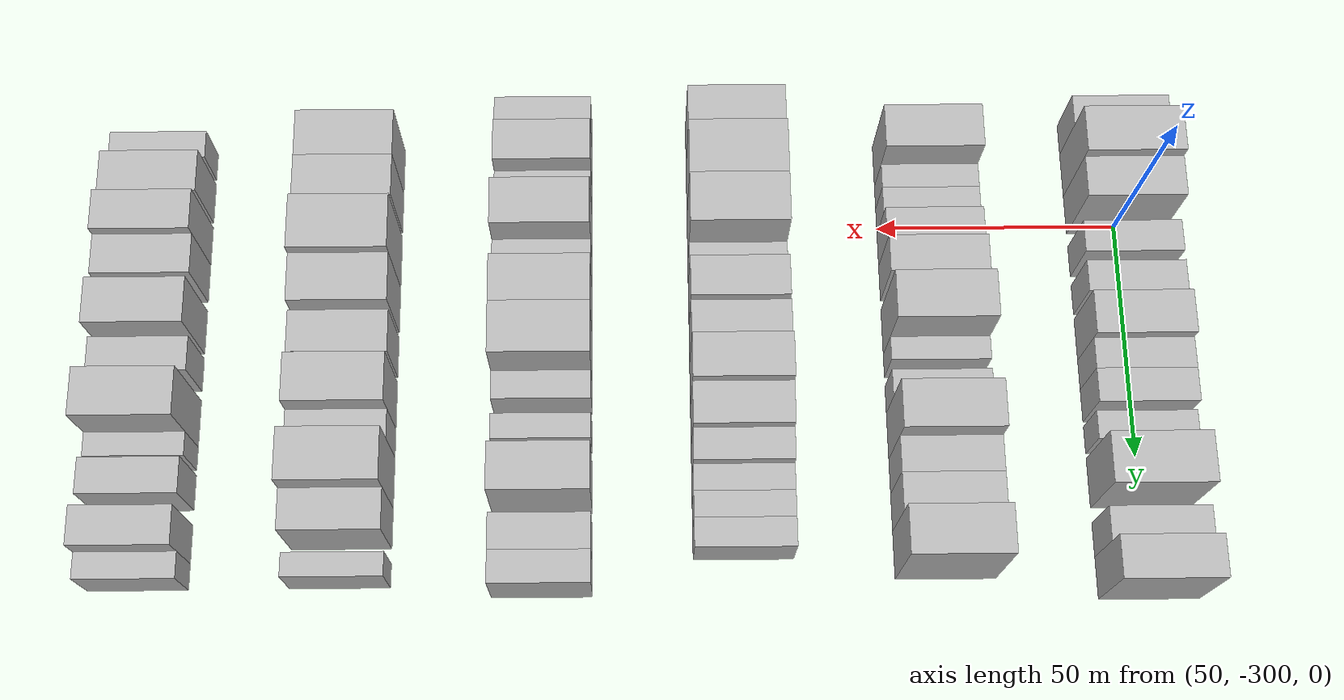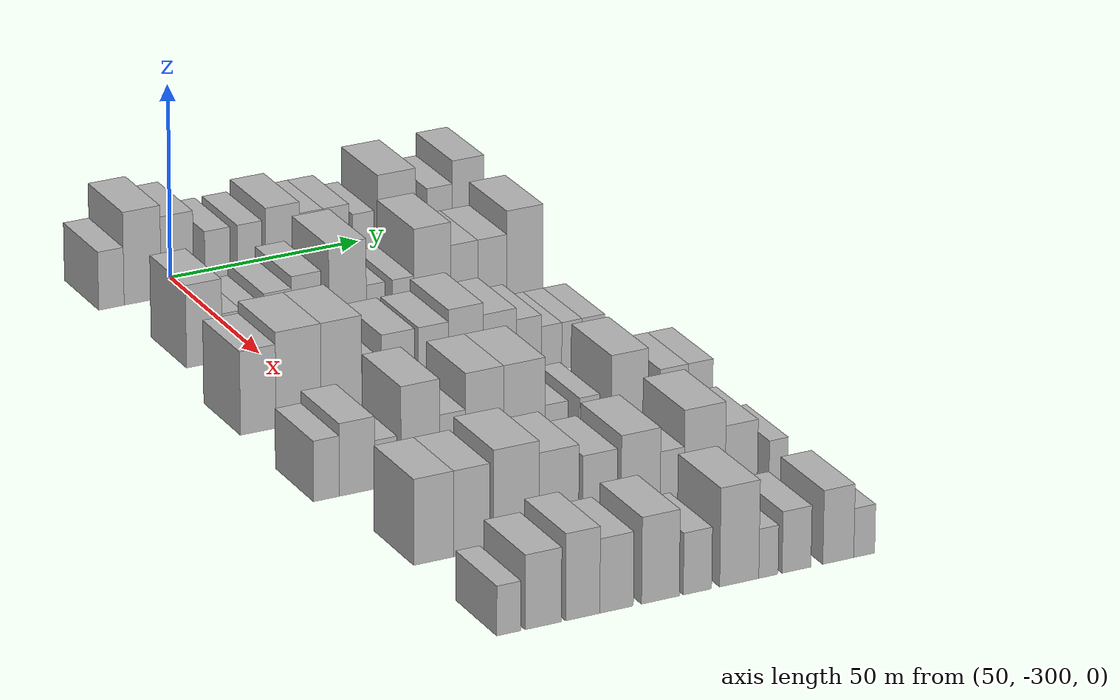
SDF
<sdf version="1.6">
 <world name="default">
  <model name="building_32">
   <static>1</static>
   <pose>50.0000 -320.1309 0 0.000000 0.000000 0.000000</pose>
   <link name="link">
    <pose>0 0 7.50 0 0 0</pose>
    <collision name="collision"><geometry><box><size>20.0000 6.6571 15.0000</size></box></geometry></collision>
    <visual name="visual">
     <cast_shadows>0</cast_shadows>
     <geometry><box><size>20.0000 6.6571 15.0000</size></box></geometry>
     <material>
      <script>
       <uri>model://HANNAS_wall/materials/scripts</uri>
       <uri>model://HANNAS_wall/materials/textures</uri>
       <name>vrc/HANNAS_wall</name>
      </script>
     </material>
    </visual>
   </link>
  </model>
  <model name="building_33">
   <static>1</static>
   <pose>50.0000 -311.9429 0 0.000000 0.000000 0.000000</pose>
   <link name="link">
    <pose>0 0 12.00 0 0 0</pose>
    <collision name="collision"><geometry><box><size>20.0000 9.7190 24.0000</size></box></geometry></collision>
    <visual name="visual">
     <cast_shadows>0</cast_shadows>
     <geometry><box><size>20.0000 9.7190 24.0000</size></box></geometry>
     <material>
      <script>
       <uri>model://HANNAS_wall/materials/scripts</uri>
       <uri>model://HANNAS_wall/materials/textures</uri>
       <name>vrc/HANNAS_wall</name>
      </script>
     </material>
    </visual>
   </link>
  </model>
  <model name="building_34">
   <static>1</static>
   <pose>50.0000 -302.8104 0 0.000000 0.000000 0.000000</pose>
   <link name="link">
    <pose>0 0 10.50 0 0 0</pose>
    <collision name="collision"><geometry><box><size>20.0000 8.5460 21.0000</size></box></geometry></collision>
    <visual name="visual">
     <cast_shadows>0</cast_shadows>
     <geometry><box><size>20.0000 8.5460 21.0000</size></box></geometry>
     <material>
      <script>
       <uri>model://HANNAS_wall/materials/scripts</uri>
       <uri>model://HANNAS_wall/materials/textures</uri>
       <name>vrc/HANNAS_wall</name>
      </script>
     </material>
    </visual>
   </link>
  </model>
  <model name="building_35">
   <static>1</static>
   <pose>50.0000 -292.2063 0 0.000000 0.000000 0.000000</pose>
   <link name="link">
    <pose>0 0 7.50 0 0 0</pose>
    <collision name="collision"><geometry><box><size>20.0000 6.6621 15.0000</size></box></geometry></collision>
    <visual name="visual">
     <cast_shadows>0</cast_shadows>
     <geometry><box><size>20.0000 6.6621 15.0000</size></box></geometry>
     <material>
      <script>
       <uri>model://HANNAS_wall/materials/scripts</uri>
       <uri>model://HANNAS_wall/materials/textures</uri>
       <name>vrc/HANNAS_wall</name>
      </script>
     </material>
    </visual>
   </link>
  </model>
  <model name="building_36">
   <static>1</static>
   <pose>50.0000 -283.6438 0 0.000000 0.000000 0.000000</pose>
   <link name="link">
    <pose>0 0 7.50 0 0 0</pose>
    <collision name="collision"><geometry><box><size>20.0000 6.4631 15.0000</size></box></geometry></collision>
    <visual name="visual">
     <cast_shadows>0</cast_shadows>
     <geometry><box><size>20.0000 6.4631 15.0000</size></box></geometry>
     <material>
      <script>
       <uri>model://HANNAS_wall/materials/scripts</uri>
       <uri>model://HANNAS_wall/materials/textures</uri>
       <name>vrc/HANNAS_wall</name>
      </script>
     </material>
    </visual>
   </link>
  </model>
  <model name="building_37">
   <static>1</static>
   <pose>50.0000 -274.9319 0 0.000000 0.000000 0.000000</pose>
   <link name="link">
    <pose>0 0 9.00 0 0 0</pose>
    <collision name="collision"><geometry><box><size>20.0000 8.9606 18.0000</size></box></geometry></collision>
    <visual name="visual">
     <cast_shadows>0</cast_shadows>
     <geometry><box><size>20.0000 8.9606 18.0000</size></box></geometry>
     <material>
      <script>
       <uri>model://HANNAS_wall/materials/scripts</uri>
       <uri>model://HANNAS_wall/materials/textures</uri>
       <name>vrc/HANNAS_wall</name>
      </script>
     </material>
    </visual>
   </link>
  </model>
  <model name="building_38">
   <static>1</static>
   <pose>50.0000 -267.2856 0 0.000000 0.000000 0.000000</pose>
   <link name="link">
    <pose>0 0 7.50 0 0 0</pose>
    <collision name="collision"><geometry><box><size>20.0000 6.3320 15.0000</size></box></geometry></collision>
    <visual name="visual">
     <cast_shadows>0</cast_shadows>
     <geometry><box><size>20.0000 6.3320 15.0000</size></box></geometry>
     <material>
      <script>
       <uri>model://HANNAS_wall/materials/scripts</uri>
       <uri>model://HANNAS_wall/materials/textures</uri>
       <name>vrc/HANNAS_wall</name>
      </script>
     </material>
    </visual>
   </link>
  </model>
  <model name="building_39">
   <static>1</static>
   <pose>50.0000 -260.6717 0 0.000000 0.000000 0.000000</pose>
   <link name="link">
    <pose>0 0 7.50 0 0 0</pose>
    <collision name="collision"><geometry><box><size>20.0000 6.8958 15.0000</size></box></geometry></collision>
    <visual name="visual">
     <cast_shadows>0</cast_shadows>
     <geometry><box><size>20.0000 6.8958 15.0000</size></box></geometry>
     <material>
      <script>
       <uri>model://HANNAS_wall/materials/scripts</uri>
       <uri>model://HANNAS_wall/materials/textures</uri>
       <name>vrc/HANNAS_wall</name>
      </script>
     </material>
    </visual>
   </link>
  </model>
  <model name="building_40">
   <static>1</static>
   <pose>50.0000 -253.3867 0 0.000000 0.000000 0.000000</pose>
   <link name="link">
    <pose>0 0 6.00 0 0 0</pose>
    <collision name="collision"><geometry><box><size>20.0000 5.6743 12.0000</size></box></geometry></collision>
    <visual name="visual">
     <cast_shadows>0</cast_shadows>
     <geometry><box><size>20.0000 5.6743 12.0000</size></box></geometry>
     <material>
      <script>
       <uri>model://HANNAS_wall/materials/scripts</uri>
       <uri>model://HANNAS_wall/materials/textures</uri>
       <name>vrc/HANNAS_wall</name>
      </script>
     </material>
    </visual>
   </link>
  </model>
  <model name="building_41">
   <static>1</static>
   <pose>50.0000 -244.4120 0 0.000000 0.000000 0.000000</pose>
   <link name="link">
    <pose>0 0 10.50 0 0 0</pose>
    <collision name="collision"><geometry><box><size>20.0000 10.2751 21.0000</size></box></geometry></collision>
    <visual name="visual">
     <cast_shadows>0</cast_shadows>
     <geometry><box><size>20.0000 10.2751 21.0000</size></box></geometry>
     <material>
      <script>
       <uri>model://HANNAS_wall/materials/scripts</uri>
       <uri>model://HANNAS_wall/materials/textures</uri>
       <name>vrc/HANNAS_wall</name>
      </script>
     </material>
    </visual>
   </link>
  </model>
  <model name="building_42">
   <static>1</static>
   <pose>50.0000 -232.7941 0 0.000000 0.000000 0.000000</pose>
   <link name="link">
    <pose>0 0 7.50 0 0 0</pose>
    <collision name="collision"><geometry><box><size>20.0000 6.9606 15.0000</size></box></geometry></collision>
    <visual name="visual">
     <cast_shadows>0</cast_shadows>
     <geometry><box><size>20.0000 6.9606 15.0000</size></box></geometry>
     <material>
      <script>
       <uri>model://HANNAS_wall/materials/scripts</uri>
       <uri>model://HANNAS_wall/materials/textures</uri>
       <name>vrc/HANNAS_wall</name>
      </script>
     </material>
    </visual>
   </link>
  </model>
  <model name="building_43">
   <static>1</static>
   <pose>50.0000 -225.0545 0 0.000000 0.000000 0.000000</pose>
   <link name="link">
    <pose>0 0 10.50 0 0 0</pose>
    <collision name="collision"><geometry><box><size>20.0000 8.5187 21.0000</size></box></geometry></collision>
    <visual name="visual">
     <cast_shadows>0</cast_shadows>
     <geometry><box><size>20.0000 8.5187 21.0000</size></box></geometry>
     <material>
      <script>
       <uri>model://HANNAS_wall/materials/scripts</uri>
       <uri>model://HANNAS_wall/materials/textures</uri>
       <name>vrc/HANNAS_wall</name>
      </script>
     </material>
    </visual>
   </link>
  </model>
  <model name="building_171">
   <static>1</static>
   <pose>90.0000 -314.2576 0 0.000000 0.000000 0.000000</pose>
   <link name="link">
    <pose>0 0 10.50 0 0 0</pose>
    <collision name="collision"><geometry><box><size>20.0000 9.2262 21.0000</size></box></geometry></collision>
    <visual name="visual">
     <cast_shadows>0</cast_shadows>
     <geometry><box><size>20.0000 9.2262 21.0000</size></box></geometry>
     <material>
      <script>
       <uri>model://HANNAS_wall/materials/scripts</uri>
       <uri>model://HANNAS_wall/materials/textures</uri>
       <name>vrc/HANNAS_wall</name>
      </script>
     </material>
    </visual>
   </link>
  </model>
  <model name="building_172">
   <static>1</static>
   <pose>90.0000 -307.0627 0 0.000000 0.000000 0.000000</pose>
   <link name="link">
    <pose>0 0 6.00 0 0 0</pose>
    <collision name="collision"><geometry><box><size>20.0000 5.1637 12.0000</size></box></geometry></collision>
    <visual name="visual">
     <cast_shadows>0</cast_shadows>
     <geometry><box><size>20.0000 5.1637 12.0000</size></box></geometry>
     <material>
      <script>
       <uri>model://HANNAS_wall/materials/scripts</uri>
       <uri>model://HANNAS_wall/materials/textures</uri>
       <name>vrc/HANNAS_wall</name>
      </script>
     </material>
    </visual>
   </link>
  </model>
  <model name="building_173">
   <static>1</static>
   <pose>90.0000 -301.6283 0 0.000000 0.000000 0.000000</pose>
   <link name="link">
    <pose>0 0 6.00 0 0 0</pose>
    <collision name="collision"><geometry><box><size>20.0000 5.7050 12.0000</size></box></geometry></collision>
    <visual name="visual">
     <cast_shadows>0</cast_shadows>
     <geometry><box><size>20.0000 5.7050 12.0000</size></box></geometry>
     <material>
      <script>
       <uri>model://HANNAS_wall/materials/scripts</uri>
       <uri>model://HANNAS_wall/materials/textures</uri>
       <name>vrc/HANNAS_wall</name>
      </script>
     </material>
    </visual>
   </link>
  </model>
  <model name="building_174">
   <static>1</static>
   <pose>90.0000 -295.1822 0 0.000000 0.000000 0.000000</pose>
   <link name="link">
    <pose>0 0 7.50 0 0 0</pose>
    <collision name="collision"><geometry><box><size>20.0000 7.1871 15.0000</size></box></geometry></collision>
    <visual name="visual">
     <cast_shadows>0</cast_shadows>
     <geometry><box><size>20.0000 7.1871 15.0000</size></box></geometry>
     <material>
      <script>
       <uri>model://HANNAS_wall/materials/scripts</uri>
       <uri>model://HANNAS_wall/materials/textures</uri>
       <name>vrc/HANNAS_wall</name>
      </script>
     </material>
    </visual>
   </link>
  </model>
  <model name="building_175">
   <static>1</static>
   <pose>90.0000 -287.7151 0 0.000000 0.000000 0.000000</pose>
   <link name="link">
    <pose>0 0 9.00 0 0 0</pose>
    <collision name="collision"><geometry><box><size>20.0000 7.7472 18.0000</size></box></geometry></collision>
    <visual name="visual">
     <cast_shadows>0</cast_shadows>
     <geometry><box><size>20.0000 7.7472 18.0000</size></box></geometry>
     <material>
      <script>
       <uri>model://HANNAS_wall/materials/scripts</uri>
       <uri>model://HANNAS_wall/materials/textures</uri>
       <name>vrc/HANNAS_wall</name>
      </script>
     </material>
    </visual>
   </link>
  </model>
  <model name="building_176">
   <static>1</static>
   <pose>90.0000 -276.9374 0 0.000000 0.000000 0.000000</pose>
   <link name="link">
    <pose>0 0 12.00 0 0 0</pose>
    <collision name="collision"><geometry><box><size>20.0000 9.8082 24.0000</size></box></geometry></collision>
    <visual name="visual">
     <cast_shadows>0</cast_shadows>
     <geometry><box><size>20.0000 9.8082 24.0000</size></box></geometry>
     <material>
      <script>
       <uri>model://HANNAS_wall/materials/scripts</uri>
       <uri>model://HANNAS_wall/materials/textures</uri>
       <name>vrc/HANNAS_wall</name>
      </script>
     </material>
    </visual>
   </link>
  </model>
  <model name="building_177">
   <static>1</static>
   <pose>90.0000 -269.5954 0 0.000000 0.000000 0.000000</pose>
   <link name="link">
    <pose>0 0 6.00 0 0 0</pose>
    <collision name="collision"><geometry><box><size>20.0000 4.8759 12.0000</size></box></geometry></collision>
    <visual name="visual">
     <cast_shadows>0</cast_shadows>
     <geometry><box><size>20.0000 4.8759 12.0000</size></box></geometry>
     <material>
      <script>
       <uri>model://HANNAS_wall/materials/scripts</uri>
       <uri>model://HANNAS_wall/materials/textures</uri>
       <name>vrc/HANNAS_wall</name>
      </script>
     </material>
    </visual>
   </link>
  </model>
  <model name="building_178">
   <static>1</static>
   <pose>90.0000 -262.3043 0 0.000000 0.000000 0.000000</pose>
   <link name="link">
    <pose>0 0 6.00 0 0 0</pose>
    <collision name="collision"><geometry><box><size>20.0000 5.7062 12.0000</size></box></geometry></collision>
    <visual name="visual">
     <cast_shadows>0</cast_shadows>
     <geometry><box><size>20.0000 5.7062 12.0000</size></box></geometry>
     <material>
      <script>
       <uri>model://HANNAS_wall/materials/scripts</uri>
       <uri>model://HANNAS_wall/materials/textures</uri>
       <name>vrc/HANNAS_wall</name>
      </script>
     </material>
    </visual>
   </link>
  </model>
  <model name="building_179">
   <static>1</static>
   <pose>90.0000 -254.6218 0 0.000000 0.000000 0.000000</pose>
   <link name="link">
    <pose>0 0 12.00 0 0 0</pose>
    <collision name="collision"><geometry><box><size>20.0000 9.6590 24.0000</size></box></geometry></collision>
    <visual name="visual">
     <cast_shadows>0</cast_shadows>
     <geometry><box><size>20.0000 9.6590 24.0000</size></box></geometry>
     <material>
      <script>
       <uri>model://HANNAS_wall/materials/scripts</uri>
       <uri>model://HANNAS_wall/materials/textures</uri>
       <name>vrc/HANNAS_wall</name>
      </script>
     </material>
    </visual>
   </link>
  </model>
  <model name="building_180">
   <static>1</static>
   <pose>90.0000 -246.1780 0 0.000000 0.000000 0.000000</pose>
   <link name="link">
    <pose>0 0 9.00 0 0 0</pose>
    <collision name="collision"><geometry><box><size>20.0000 7.2286 18.0000</size></box></geometry></collision>
    <visual name="visual">
     <cast_shadows>0</cast_shadows>
     <geometry><box><size>20.0000 7.2286 18.0000</size></box></geometry>
     <material>
      <script>
       <uri>model://HANNAS_wall/materials/scripts</uri>
       <uri>model://HANNAS_wall/materials/textures</uri>
       <name>vrc/HANNAS_wall</name>
      </script>
     </material>
    </visual>
   </link>
  </model>
  <model name="building_181">
   <static>1</static>
   <pose>90.0000 -238.7006 0 0.000000 0.000000 0.000000</pose>
   <link name="link">
    <pose>0 0 9.00 0 0 0</pose>
    <collision name="collision"><geometry><box><size>20.0000 7.7262 18.0000</size></box></geometry></collision>
    <visual name="visual">
     <cast_shadows>0</cast_shadows>
     <geometry><box><size>20.0000 7.7262 18.0000</size></box></geometry>
     <material>
      <script>
       <uri>model://HANNAS_wall/materials/scripts</uri>
       <uri>model://HANNAS_wall/materials/textures</uri>
       <name>vrc/HANNAS_wall</name>
      </script>
     </material>
    </visual>
   </link>
  </model>
  <model name="building_182">
   <static>1</static>
   <pose>90.0000 -230.0001 0 0.000000 0.000000 0.000000</pose>
   <link name="link">
    <pose>0 0 12.00 0 0 0</pose>
    <collision name="collision"><geometry><box><size>20.0000 9.6747 24.0000</size></box></geometry></collision>
    <visual name="visual">
     <cast_shadows>0</cast_shadows>
     <geometry><box><size>20.0000 9.6747 24.0000</size></box></geometry>
     <material>
      <script>
       <uri>model://HANNAS_wall/materials/scripts</uri>
       <uri>model://HANNAS_wall/materials/textures</uri>
       <name>vrc/HANNAS_wall</name>
      </script>
     </material>
    </visual>
   </link>
  </model>
  <model name="building_307">
   <static>1</static>
   <pose>130.0000 -319.1335 0 0.000000 0.000000 0.000000</pose>
   <link name="link">
    <pose>0 0 10.50 0 0 0</pose>
    <collision name="collision"><geometry><box><size>20.0000 9.0586 21.0000</size></box></geometry></collision>
    <visual name="visual">
     <cast_shadows>0</cast_shadows>
     <geometry><box><size>20.0000 9.0586 21.0000</size></box></geometry>
     <material>
      <script>
       <uri>model://HANNAS_wall/materials/scripts</uri>
       <uri>model://HANNAS_wall/materials/textures</uri>
       <name>vrc/HANNAS_wall</name>
      </script>
     </material>
    </visual>
   </link>
  </model>
  <model name="building_308">
   <static>1</static>
   <pose>130.0000 -308.8516 0 0.000000 0.000000 0.000000</pose>
   <link name="link">
    <pose>0 0 12.00 0 0 0</pose>
    <collision name="collision"><geometry><box><size>20.0000 11.5054 24.0000</size></box></geometry></collision>
    <visual name="visual">
     <cast_shadows>0</cast_shadows>
     <geometry><box><size>20.0000 11.5054 24.0000</size></box></geometry>
     <material>
      <script>
       <uri>model://HANNAS_wall/materials/scripts</uri>
       <uri>model://HANNAS_wall/materials/textures</uri>
       <name>vrc/HANNAS_wall</name>
      </script>
     </material>
    </visual>
   </link>
  </model>
  <model name="building_309">
   <static>1</static>
   <pose>130.0000 -297.8723 0 0.000000 0.000000 0.000000</pose>
   <link name="link">
    <pose>0 0 12.00 0 0 0</pose>
    <collision name="collision"><geometry><box><size>20.0000 10.4531 24.0000</size></box></geometry></collision>
    <visual name="visual">
     <cast_shadows>0</cast_shadows>
     <geometry><box><size>20.0000 10.4531 24.0000</size></box></geometry>
     <material>
      <script>
       <uri>model://HANNAS_wall/materials/scripts</uri>
       <uri>model://HANNAS_wall/materials/textures</uri>
       <name>vrc/HANNAS_wall</name>
      </script>
     </material>
    </visual>
   </link>
  </model>
  <model name="building_310">
   <static>1</static>
   <pose>130.0000 -290.0929 0 0.000000 0.000000 0.000000</pose>
   <link name="link">
    <pose>0 0 6.00 0 0 0</pose>
    <collision name="collision"><geometry><box><size>20.0000 5.1057 12.0000</size></box></geometry></collision>
    <visual name="visual">
     <cast_shadows>0</cast_shadows>
     <geometry><box><size>20.0000 5.1057 12.0000</size></box></geometry>
     <material>
      <script>
       <uri>model://HANNAS_wall/materials/scripts</uri>
       <uri>model://HANNAS_wall/materials/textures</uri>
       <name>vrc/HANNAS_wall</name>
      </script>
     </material>
    </visual>
   </link>
  </model>
  <model name="building_311">
   <static>1</static>
   <pose>130.0000 -283.2966 0 0.000000 0.000000 0.000000</pose>
   <link name="link">
    <pose>0 0 9.00 0 0 0</pose>
    <collision name="collision"><geometry><box><size>20.0000 8.4870 18.0000</size></box></geometry></collision>
    <visual name="visual">
     <cast_shadows>0</cast_shadows>
     <geometry><box><size>20.0000 8.4870 18.0000</size></box></geometry>
     <material>
      <script>
       <uri>model://HANNAS_wall/materials/scripts</uri>
       <uri>model://HANNAS_wall/materials/textures</uri>
       <name>vrc/HANNAS_wall</name>
      </script>
     </material>
    </visual>
   </link>
  </model>
  <model name="building_312">
   <static>1</static>
   <pose>130.0000 -274.1834 0 0.000000 0.000000 0.000000</pose>
   <link name="link">
    <pose>0 0 9.00 0 0 0</pose>
    <collision name="collision"><geometry><box><size>20.0000 7.7394 18.0000</size></box></geometry></collision>
    <visual name="visual">
     <cast_shadows>0</cast_shadows>
     <geometry><box><size>20.0000 7.7394 18.0000</size></box></geometry>
     <material>
      <script>
       <uri>model://HANNAS_wall/materials/scripts</uri>
       <uri>model://HANNAS_wall/materials/textures</uri>
       <name>vrc/HANNAS_wall</name>
      </script>
     </material>
    </visual>
   </link>
  </model>
  <model name="building_313">
   <static>1</static>
   <pose>130.0000 -265.7691 0 0.000000 0.000000 0.000000</pose>
   <link name="link">
    <pose>0 0 10.50 0 0 0</pose>
    <collision name="collision"><geometry><box><size>20.0000 9.0893 21.0000</size></box></geometry></collision>
    <visual name="visual">
     <cast_shadows>0</cast_shadows>
     <geometry><box><size>20.0000 9.0893 21.0000</size></box></geometry>
     <material>
      <script>
       <uri>model://HANNAS_wall/materials/scripts</uri>
       <uri>model://HANNAS_wall/materials/textures</uri>
       <name>vrc/HANNAS_wall</name>
      </script>
     </material>
    </visual>
   </link>
  </model>
  <model name="building_314">
   <static>1</static>
   <pose>130.0000 -256.9233 0 0.000000 0.000000 0.000000</pose>
   <link name="link">
    <pose>0 0 9.00 0 0 0</pose>
    <collision name="collision"><geometry><box><size>20.0000 8.6022 18.0000</size></box></geometry></collision>
    <visual name="visual">
     <cast_shadows>0</cast_shadows>
     <geometry><box><size>20.0000 8.6022 18.0000</size></box></geometry>
     <material>
      <script>
       <uri>model://HANNAS_wall/materials/scripts</uri>
       <uri>model://HANNAS_wall/materials/textures</uri>
       <name>vrc/HANNAS_wall</name>
      </script>
     </material>
    </visual>
   </link>
  </model>
  <model name="building_315">
   <static>1</static>
   <pose>130.0000 -249.3582 0 0.000000 0.000000 0.000000</pose>
   <link name="link">
    <pose>0 0 7.50 0 0 0</pose>
    <collision name="collision"><geometry><box><size>20.0000 6.5279 15.0000</size></box></geometry></collision>
    <visual name="visual">
     <cast_shadows>0</cast_shadows>
     <geometry><box><size>20.0000 6.5279 15.0000</size></box></geometry>
     <material>
      <script>
       <uri>model://HANNAS_wall/materials/scripts</uri>
       <uri>model://HANNAS_wall/materials/textures</uri>
       <name>vrc/HANNAS_wall</name>
      </script>
     </material>
    </visual>
   </link>
  </model>
  <model name="building_316">
   <static>1</static>
   <pose>130.0000 -243.3847 0 0.000000 0.000000 0.000000</pose>
   <link name="link">
    <pose>0 0 6.00 0 0 0</pose>
    <collision name="collision"><geometry><box><size>20.0000 5.4192 12.0000</size></box></geometry></collision>
    <visual name="visual">
     <cast_shadows>0</cast_shadows>
     <geometry><box><size>20.0000 5.4192 12.0000</size></box></geometry>
     <material>
      <script>
       <uri>model://HANNAS_wall/materials/scripts</uri>
       <uri>model://HANNAS_wall/materials/textures</uri>
       <name>vrc/HANNAS_wall</name>
      </script>
     </material>
    </visual>
   </link>
  </model>
  <model name="building_317">
   <static>1</static>
   <pose>130.0000 -238.0210 0 0.000000 0.000000 0.000000</pose>
   <link name="link">
    <pose>0 0 6.00 0 0 0</pose>
    <collision name="collision"><geometry><box><size>20.0000 5.3082 12.0000</size></box></geometry></collision>
    <visual name="visual">
     <cast_shadows>0</cast_shadows>
     <geometry><box><size>20.0000 5.3082 12.0000</size></box></geometry>
     <material>
      <script>
       <uri>model://HANNAS_wall/materials/scripts</uri>
       <uri>model://HANNAS_wall/materials/textures</uri>
       <name>vrc/HANNAS_wall</name>
      </script>
     </material>
    </visual>
   </link>
  </model>
  <model name="building_318">
   <static>1</static>
   <pose>130.0000 -232.3987 0 0.000000 0.000000 0.000000</pose>
   <link name="link">
    <pose>0 0 6.00 0 0 0</pose>
    <collision name="collision"><geometry><box><size>20.0000 5.9364 12.0000</size></box></geometry></collision>
    <visual name="visual">
     <cast_shadows>0</cast_shadows>
     <geometry><box><size>20.0000 5.9364 12.0000</size></box></geometry>
     <material>
      <script>
       <uri>model://HANNAS_wall/materials/scripts</uri>
       <uri>model://HANNAS_wall/materials/textures</uri>
       <name>vrc/HANNAS_wall</name>
      </script>
     </material>
    </visual>
   </link>
  </model>
  <model name="building_445">
   <static>1</static>
   <pose>170.0000 -320.9712 0 0.000000 0.000000 0.000000</pose>
   <link name="link">
    <pose>0 0 7.50 0 0 0</pose>
    <collision name="collision"><geometry><box><size>20.0000 6.4925 15.0000</size></box></geometry></collision>
    <visual name="visual">
     <cast_shadows>0</cast_shadows>
     <geometry><box><size>20.0000 6.4925 15.0000</size></box></geometry>
     <material>
      <script>
       <uri>model://HANNAS_wall/materials/scripts</uri>
       <uri>model://HANNAS_wall/materials/textures</uri>
       <name>vrc/HANNAS_wall</name>
      </script>
     </material>
    </visual>
   </link>
  </model>
  <model name="building_446">
   <static>1</static>
   <pose>170.0000 -313.3001 0 0.000000 0.000000 0.000000</pose>
   <link name="link">
    <pose>0 0 9.00 0 0 0</pose>
    <collision name="collision"><geometry><box><size>20.0000 8.8496 18.0000</size></box></geometry></collision>
    <visual name="visual">
     <cast_shadows>0</cast_shadows>
     <geometry><box><size>20.0000 8.8496 18.0000</size></box></geometry>
     <material>
      <script>
       <uri>model://HANNAS_wall/materials/scripts</uri>
       <uri>model://HANNAS_wall/materials/textures</uri>
       <name>vrc/HANNAS_wall</name>
      </script>
     </material>
    </visual>
   </link>
  </model>
  <model name="building_447">
   <static>1</static>
   <pose>170.0000 -306.0450 0 0.000000 0.000000 0.000000</pose>
   <link name="link">
    <pose>0 0 6.00 0 0 0</pose>
    <collision name="collision"><geometry><box><size>20.0000 5.6607 12.0000</size></box></geometry></collision>
    <visual name="visual">
     <cast_shadows>0</cast_shadows>
     <geometry><box><size>20.0000 5.6607 12.0000</size></box></geometry>
     <material>
      <script>
       <uri>model://HANNAS_wall/materials/scripts</uri>
       <uri>model://HANNAS_wall/materials/textures</uri>
       <name>vrc/HANNAS_wall</name>
      </script>
     </material>
    </visual>
   </link>
  </model>
  <model name="building_448">
   <static>1</static>
   <pose>170.0000 -297.3423 0 0.000000 0.000000 0.000000</pose>
   <link name="link">
    <pose>0 0 12.00 0 0 0</pose>
    <collision name="collision"><geometry><box><size>20.0000 9.7446 24.0000</size></box></geometry></collision>
    <visual name="visual">
     <cast_shadows>0</cast_shadows>
     <geometry><box><size>20.0000 9.7446 24.0000</size></box></geometry>
     <material>
      <script>
       <uri>model://HANNAS_wall/materials/scripts</uri>
       <uri>model://HANNAS_wall/materials/textures</uri>
       <name>vrc/HANNAS_wall</name>
      </script>
     </material>
    </visual>
   </link>
  </model>
  <model name="building_449">
   <static>1</static>
   <pose>170.0000 -289.1761 0 0.000000 0.000000 0.000000</pose>
   <link name="link">
    <pose>0 0 7.50 0 0 0</pose>
    <collision name="collision"><geometry><box><size>20.0000 6.5877 15.0000</size></box></geometry></collision>
    <visual name="visual">
     <cast_shadows>0</cast_shadows>
     <geometry><box><size>20.0000 6.5877 15.0000</size></box></geometry>
     <material>
      <script>
       <uri>model://HANNAS_wall/materials/scripts</uri>
       <uri>model://HANNAS_wall/materials/textures</uri>
       <name>vrc/HANNAS_wall</name>
      </script>
     </material>
    </visual>
   </link>
  </model>
  <model name="building_450">
   <static>1</static>
   <pose>170.0000 -281.0323 0 0.000000 0.000000 0.000000</pose>
   <link name="link">
    <pose>0 0 12.00 0 0 0</pose>
    <collision name="collision"><geometry><box><size>20.0000 9.7000 24.0000</size></box></geometry></collision>
    <visual name="visual">
     <cast_shadows>0</cast_shadows>
     <geometry><box><size>20.0000 9.7000 24.0000</size></box></geometry>
     <material>
      <script>
       <uri>model://HANNAS_wall/materials/scripts</uri>
       <uri>model://HANNAS_wall/materials/textures</uri>
       <name>vrc/HANNAS_wall</name>
      </script>
     </material>
    </visual>
   </link>
  </model>
  <model name="building_451">
   <static>1</static>
   <pose>170.0000 -270.8742 0 0.000000 0.000000 0.000000</pose>
   <link name="link">
    <pose>0 0 12.00 0 0 0</pose>
    <collision name="collision"><geometry><box><size>20.0000 10.6162 24.0000</size></box></geometry></collision>
    <visual name="visual">
     <cast_shadows>0</cast_shadows>
     <geometry><box><size>20.0000 10.6162 24.0000</size></box></geometry>
     <material>
      <script>
       <uri>model://HANNAS_wall/materials/scripts</uri>
       <uri>model://HANNAS_wall/materials/textures</uri>
       <name>vrc/HANNAS_wall</name>
      </script>
     </material>
    </visual>
   </link>
  </model>
  <model name="building_452">
   <static>1</static>
   <pose>170.0000 -262.6526 0 0.000000 0.000000 0.000000</pose>
   <link name="link">
    <pose>0 0 6.00 0 0 0</pose>
    <collision name="collision"><geometry><box><size>20.0000 5.8271 12.0000</size></box></geometry></collision>
    <visual name="visual">
     <cast_shadows>0</cast_shadows>
     <geometry><box><size>20.0000 5.8271 12.0000</size></box></geometry>
     <material>
      <script>
       <uri>model://HANNAS_wall/materials/scripts</uri>
       <uri>model://HANNAS_wall/materials/textures</uri>
       <name>vrc/HANNAS_wall</name>
      </script>
     </material>
    </visual>
   </link>
  </model>
  <model name="building_453">
   <static>1</static>
   <pose>170.0000 -254.1486 0 0.000000 0.000000 0.000000</pose>
   <link name="link">
    <pose>0 0 6.00 0 0 0</pose>
    <collision name="collision"><geometry><box><size>20.0000 5.1808 12.0000</size></box></geometry></collision>
    <visual name="visual">
     <cast_shadows>0</cast_shadows>
     <geometry><box><size>20.0000 5.1808 12.0000</size></box></geometry>
     <material>
      <script>
       <uri>model://HANNAS_wall/materials/scripts</uri>
       <uri>model://HANNAS_wall/materials/textures</uri>
       <name>vrc/HANNAS_wall</name>
      </script>
     </material>
    </visual>
   </link>
  </model>
  <model name="building_454">
   <static>1</static>
   <pose>170.0000 -243.7498 0 0.000000 0.000000 0.000000</pose>
   <link name="link">
    <pose>0 0 10.50 0 0 0</pose>
    <collision name="collision"><geometry><box><size>20.0000 9.6168 21.0000</size></box></geometry></collision>
    <visual name="visual">
     <cast_shadows>0</cast_shadows>
     <geometry><box><size>20.0000 9.6168 21.0000</size></box></geometry>
     <material>
      <script>
       <uri>model://HANNAS_wall/materials/scripts</uri>
       <uri>model://HANNAS_wall/materials/textures</uri>
       <name>vrc/HANNAS_wall</name>
      </script>
     </material>
    </visual>
   </link>
  </model>
  <model name="building_455">
   <static>1</static>
   <pose>170.0000 -232.2958 0 0.000000 0.000000 0.000000</pose>
   <link name="link">
    <pose>0 0 7.50 0 0 0</pose>
    <collision name="collision"><geometry><box><size>20.0000 7.2913 15.0000</size></box></geometry></collision>
    <visual name="visual">
     <cast_shadows>0</cast_shadows>
     <geometry><box><size>20.0000 7.2913 15.0000</size></box></geometry>
     <material>
      <script>
       <uri>model://HANNAS_wall/materials/scripts</uri>
       <uri>model://HANNAS_wall/materials/textures</uri>
       <name>vrc/HANNAS_wall</name>
      </script>
     </material>
    </visual>
   </link>
  </model>
  <model name="building_456">
   <static>1</static>
   <pose>170.0000 -225.3969 0 0.000000 0.000000 0.000000</pose>
   <link name="link">
    <pose>0 0 7.50 0 0 0</pose>
    <collision name="collision"><geometry><box><size>20.0000 6.5066 15.0000</size></box></geometry></collision>
    <visual name="visual">
     <cast_shadows>0</cast_shadows>
     <geometry><box><size>20.0000 6.5066 15.0000</size></box></geometry>
     <material>
      <script>
       <uri>model://HANNAS_wall/materials/scripts</uri>
       <uri>model://HANNAS_wall/materials/textures</uri>
       <name>vrc/HANNAS_wall</name>
      </script>
     </material>
    </visual>
   </link>
  </model>
  <model name="building_580">
   <static>1</static>
   <pose>210.0000 -313.8073 0 0.000000 0.000000 0.000000</pose>
   <link name="link">
    <pose>0 0 10.50 0 0 0</pose>
    <collision name="collision"><geometry><box><size>20.0000 9.8975 21.0000</size></box></geometry></collision>
    <visual name="visual">
     <cast_shadows>0</cast_shadows>
     <geometry><box><size>20.0000 9.8975 21.0000</size></box></geometry>
     <material>
      <script>
       <uri>model://HANNAS_wall/materials/scripts</uri>
       <uri>model://HANNAS_wall/materials/textures</uri>
       <name>vrc/HANNAS_wall</name>
      </script>
     </material>
    </visual>
   </link>
  </model>
  <model name="building_581">
   <static>1</static>
   <pose>210.0000 -304.3984 0 0.000000 0.000000 0.000000</pose>
   <link name="link">
    <pose>0 0 10.50 0 0 0</pose>
    <collision name="collision"><geometry><box><size>20.0000 8.9204 21.0000</size></box></geometry></collision>
    <visual name="visual">
     <cast_shadows>0</cast_shadows>
     <geometry><box><size>20.0000 8.9204 21.0000</size></box></geometry>
     <material>
      <script>
       <uri>model://HANNAS_wall/materials/scripts</uri>
       <uri>model://HANNAS_wall/materials/textures</uri>
       <name>vrc/HANNAS_wall</name>
      </script>
     </material>
    </visual>
   </link>
  </model>
  <model name="building_582">
   <static>1</static>
   <pose>210.0000 -293.2585 0 0.000000 0.000000 0.000000</pose>
   <link name="link">
    <pose>0 0 12.00 0 0 0</pose>
    <collision name="collision"><geometry><box><size>20.0000 11.3594 24.0000</size></box></geometry></collision>
    <visual name="visual">
     <cast_shadows>0</cast_shadows>
     <geometry><box><size>20.0000 11.3594 24.0000</size></box></geometry>
     <material>
      <script>
       <uri>model://HANNAS_wall/materials/scripts</uri>
       <uri>model://HANNAS_wall/materials/textures</uri>
       <name>vrc/HANNAS_wall</name>
      </script>
     </material>
    </visual>
   </link>
  </model>
  <model name="building_583">
   <static>1</static>
   <pose>210.0000 -282.6014 0 0.000000 0.000000 0.000000</pose>
   <link name="link">
    <pose>0 0 10.50 0 0 0</pose>
    <collision name="collision"><geometry><box><size>20.0000 9.9548 21.0000</size></box></geometry></collision>
    <visual name="visual">
     <cast_shadows>0</cast_shadows>
     <geometry><box><size>20.0000 9.9548 21.0000</size></box></geometry>
     <material>
      <script>
       <uri>model://HANNAS_wall/materials/scripts</uri>
       <uri>model://HANNAS_wall/materials/textures</uri>
       <name>vrc/HANNAS_wall</name>
      </script>
     </material>
    </visual>
   </link>
  </model>
  <model name="building_584">
   <static>1</static>
   <pose>210.0000 -272.2710 0 0.000000 0.000000 0.000000</pose>
   <link name="link">
    <pose>0 0 9.00 0 0 0</pose>
    <collision name="collision"><geometry><box><size>20.0000 8.7059 18.0000</size></box></geometry></collision>
    <visual name="visual">
     <cast_shadows>0</cast_shadows>
     <geometry><box><size>20.0000 8.7059 18.0000</size></box></geometry>
     <material>
      <script>
       <uri>model://HANNAS_wall/materials/scripts</uri>
       <uri>model://HANNAS_wall/materials/textures</uri>
       <name>vrc/HANNAS_wall</name>
      </script>
     </material>
    </visual>
   </link>
  </model>
  <model name="building_585">
   <static>1</static>
   <pose>210.0000 -261.9564 0 0.000000 0.000000 0.000000</pose>
   <link name="link">
    <pose>0 0 10.50 0 0 0</pose>
    <collision name="collision"><geometry><box><size>20.0000 9.9232 21.0000</size></box></geometry></collision>
    <visual name="visual">
     <cast_shadows>0</cast_shadows>
     <geometry><box><size>20.0000 9.9232 21.0000</size></box></geometry>
     <material>
      <script>
       <uri>model://HANNAS_wall/materials/scripts</uri>
       <uri>model://HANNAS_wall/materials/textures</uri>
       <name>vrc/HANNAS_wall</name>
      </script>
     </material>
    </visual>
   </link>
  </model>
  <model name="building_586">
   <static>1</static>
   <pose>210.0000 -253.9862 0 0.000000 0.000000 0.000000</pose>
   <link name="link">
    <pose>0 0 7.50 0 0 0</pose>
    <collision name="collision"><geometry><box><size>20.0000 6.0173 15.0000</size></box></geometry></collision>
    <visual name="visual">
     <cast_shadows>0</cast_shadows>
     <geometry><box><size>20.0000 6.0173 15.0000</size></box></geometry>
     <material>
      <script>
       <uri>model://HANNAS_wall/materials/scripts</uri>
       <uri>model://HANNAS_wall/materials/textures</uri>
       <name>vrc/HANNAS_wall</name>
      </script>
     </material>
    </visual>
   </link>
  </model>
  <model name="building_587">
   <static>1</static>
   <pose>210.0000 -245.7087 0 0.000000 0.000000 0.000000</pose>
   <link name="link">
    <pose>0 0 12.00 0 0 0</pose>
    <collision name="collision"><geometry><box><size>20.0000 10.5378 24.0000</size></box></geometry></collision>
    <visual name="visual">
     <cast_shadows>0</cast_shadows>
     <geometry><box><size>20.0000 10.5378 24.0000</size></box></geometry>
     <material>
      <script>
       <uri>model://HANNAS_wall/materials/scripts</uri>
       <uri>model://HANNAS_wall/materials/textures</uri>
       <name>vrc/HANNAS_wall</name>
      </script>
     </material>
    </visual>
   </link>
  </model>
  <model name="building_588">
   <static>1</static>
   <pose>210.0000 -236.2999 0 0.000000 0.000000 0.000000</pose>
   <link name="link">
    <pose>0 0 9.00 0 0 0</pose>
    <collision name="collision"><geometry><box><size>20.0000 8.2797 18.0000</size></box></geometry></collision>
    <visual name="visual">
     <cast_shadows>0</cast_shadows>
     <geometry><box><size>20.0000 8.2797 18.0000</size></box></geometry>
     <material>
      <script>
       <uri>model://HANNAS_wall/materials/scripts</uri>
       <uri>model://HANNAS_wall/materials/textures</uri>
       <name>vrc/HANNAS_wall</name>
      </script>
     </material>
    </visual>
   </link>
  </model>
  <model name="building_589">
   <static>1</static>
   <pose>210.0000 -226.7359 0 0.000000 0.000000 0.000000</pose>
   <link name="link">
    <pose>0 0 6.00 0 0 0</pose>
    <collision name="collision"><geometry><box><size>20.0000 4.8484 12.0000</size></box></geometry></collision>
    <visual name="visual">
     <cast_shadows>0</cast_shadows>
     <geometry><box><size>20.0000 4.8484 12.0000</size></box></geometry>
     <material>
      <script>
       <uri>model://HANNAS_wall/materials/scripts</uri>
       <uri>model://HANNAS_wall/materials/textures</uri>
       <name>vrc/HANNAS_wall</name>
      </script>
     </material>
    </visual>
   </link>
  </model>
  <model name="building_725">
   <static>1</static>
   <pose>250.0000 -315.3872 0 0.000000 0.000000 0.000000</pose>
   <link name="link">
    <pose>0 0 6.00 0 0 0</pose>
    <collision name="collision"><geometry><box><size>20.0000 5.9029 12.0000</size></box></geometry></collision>
    <visual name="visual">
     <cast_shadows>0</cast_shadows>
     <geometry><box><size>20.0000 5.9029 12.0000</size></box></geometry>
     <material>
      <script>
       <uri>model://HANNAS_wall/materials/scripts</uri>
       <uri>model://HANNAS_wall/materials/textures</uri>
       <name>vrc/HANNAS_wall</name>
      </script>
     </material>
    </visual>
   </link>
  </model>
  <model name="building_726">
   <static>1</static>
   <pose>250.0000 -306.9793 0 0.000000 0.000000 0.000000</pose>
   <link name="link">
    <pose>0 0 9.00 0 0 0</pose>
    <collision name="collision"><geometry><box><size>20.0000 8.9131 18.0000</size></box></geometry></collision>
    <visual name="visual">
     <cast_shadows>0</cast_shadows>
     <geometry><box><size>20.0000 8.9131 18.0000</size></box></geometry>
     <material>
      <script>
       <uri>model://HANNAS_wall/materials/scripts</uri>
       <uri>model://HANNAS_wall/materials/textures</uri>
       <name>vrc/HANNAS_wall</name>
      </script>
     </material>
    </visual>
   </link>
  </model>
  <model name="building_727">
   <static>1</static>
   <pose>250.0000 -297.3043 0 0.000000 0.000000 0.000000</pose>
   <link name="link">
    <pose>0 0 10.50 0 0 0</pose>
    <collision name="collision"><geometry><box><size>20.0000 8.4367 21.0000</size></box></geometry></collision>
    <visual name="visual">
     <cast_shadows>0</cast_shadows>
     <geometry><box><size>20.0000 8.4367 21.0000</size></box></geometry>
     <material>
      <script>
       <uri>model://HANNAS_wall/materials/scripts</uri>
       <uri>model://HANNAS_wall/materials/textures</uri>
       <name>vrc/HANNAS_wall</name>
      </script>
     </material>
    </visual>
   </link>
  </model>
  <model name="building_728">
   <static>1</static>
   <pose>250.0000 -288.9342 0 0.000000 0.000000 0.000000</pose>
   <link name="link">
    <pose>0 0 9.00 0 0 0</pose>
    <collision name="collision"><geometry><box><size>20.0000 8.3035 18.0000</size></box></geometry></collision>
    <visual name="visual">
     <cast_shadows>0</cast_shadows>
     <geometry><box><size>20.0000 8.3035 18.0000</size></box></geometry>
     <material>
      <script>
       <uri>model://HANNAS_wall/materials/scripts</uri>
       <uri>model://HANNAS_wall/materials/textures</uri>
       <name>vrc/HANNAS_wall</name>
      </script>
     </material>
    </visual>
   </link>
  </model>
  <model name="building_729">
   <static>1</static>
   <pose>250.0000 -278.0903 0 0.000000 0.000000 0.000000</pose>
   <link name="link">
    <pose>0 0 10.50 0 0 0</pose>
    <collision name="collision"><geometry><box><size>20.0000 9.3843 21.0000</size></box></geometry></collision>
    <visual name="visual">
     <cast_shadows>0</cast_shadows>
     <geometry><box><size>20.0000 9.3843 21.0000</size></box></geometry>
     <material>
      <script>
       <uri>model://HANNAS_wall/materials/scripts</uri>
       <uri>model://HANNAS_wall/materials/textures</uri>
       <name>vrc/HANNAS_wall</name>
      </script>
     </material>
    </visual>
   </link>
  </model>
  <model name="building_730">
   <static>1</static>
   <pose>250.0000 -268.8616 0 0.000000 0.000000 0.000000</pose>
   <link name="link">
    <pose>0 0 7.50 0 0 0</pose>
    <collision name="collision"><geometry><box><size>20.0000 7.0730 15.0000</size></box></geometry></collision>
    <visual name="visual">
     <cast_shadows>0</cast_shadows>
     <geometry><box><size>20.0000 7.0730 15.0000</size></box></geometry>
     <material>
      <script>
       <uri>model://HANNAS_wall/materials/scripts</uri>
       <uri>model://HANNAS_wall/materials/textures</uri>
       <name>vrc/HANNAS_wall</name>
      </script>
     </material>
    </visual>
   </link>
  </model>
  <model name="building_731">
   <static>1</static>
   <pose>250.0000 -258.4201 0 0.000000 0.000000 0.000000</pose>
   <link name="link">
    <pose>0 0 12.00 0 0 0</pose>
    <collision name="collision"><geometry><box><size>20.0000 9.8101 24.0000</size></box></geometry></collision>
    <visual name="visual">
     <cast_shadows>0</cast_shadows>
     <geometry><box><size>20.0000 9.8101 24.0000</size></box></geometry>
     <material>
      <script>
       <uri>model://HANNAS_wall/materials/scripts</uri>
       <uri>model://HANNAS_wall/materials/textures</uri>
       <name>vrc/HANNAS_wall</name>
      </script>
     </material>
    </visual>
   </link>
  </model>
  <model name="building_732">
   <static>1</static>
   <pose>250.0000 -251.0908 0 0.000000 0.000000 0.000000</pose>
   <link name="link">
    <pose>0 0 6.00 0 0 0</pose>
    <collision name="collision"><geometry><box><size>20.0000 4.8484 12.0000</size></box></geometry></collision>
    <visual name="visual">
     <cast_shadows>0</cast_shadows>
     <geometry><box><size>20.0000 4.8484 12.0000</size></box></geometry>
     <material>
      <script>
       <uri>model://HANNAS_wall/materials/scripts</uri>
       <uri>model://HANNAS_wall/materials/textures</uri>
       <name>vrc/HANNAS_wall</name>
      </script>
     </material>
    </visual>
   </link>
  </model>
  <model name="building_733">
   <static>1</static>
   <pose>250.0000 -244.0154 0 0.000000 0.000000 0.000000</pose>
   <link name="link">
    <pose>0 0 7.50 0 0 0</pose>
    <collision name="collision"><geometry><box><size>20.0000 7.3023 15.0000</size></box></geometry></collision>
    <visual name="visual">
     <cast_shadows>0</cast_shadows>
     <geometry><box><size>20.0000 7.3023 15.0000</size></box></geometry>
     <material>
      <script>
       <uri>model://HANNAS_wall/materials/scripts</uri>
       <uri>model://HANNAS_wall/materials/textures</uri>
       <name>vrc/HANNAS_wall</name>
      </script>
     </material>
    </visual>
   </link>
  </model>
  <model name="building_734">
   <static>1</static>
   <pose>250.0000 -233.4467 0 0.000000 0.000000 0.000000</pose>
   <link name="link">
    <pose>0 0 9.00 0 0 0</pose>
    <collision name="collision"><geometry><box><size>20.0000 7.8350 18.0000</size></box></geometry></collision>
    <visual name="visual">
     <cast_shadows>0</cast_shadows>
     <geometry><box><size>20.0000 7.8350 18.0000</size></box></geometry>
     <material>
      <script>
       <uri>model://HANNAS_wall/materials/scripts</uri>
       <uri>model://HANNAS_wall/materials/textures</uri>
       <name>vrc/HANNAS_wall</name>
      </script>
     </material>
    </visual>
   </link>
  </model>
  <model name="building_735">
   <static>1</static>
   <pose>250.0000 -226.8678 0 0.000000 0.000000 0.000000</pose>
   <link name="link">
    <pose>0 0 6.00 0 0 0</pose>
    <collision name="collision"><geometry><box><size>20.0000 5.3229 12.0000</size></box></geometry></collision>
    <visual name="visual">
     <cast_shadows>0</cast_shadows>
     <geometry><box><size>20.0000 5.3229 12.0000</size></box></geometry>
     <material>
      <script>
       <uri>model://HANNAS_wall/materials/scripts</uri>
       <uri>model://HANNAS_wall/materials/textures</uri>
       <name>vrc/HANNAS_wall</name>
      </script>
     </material>
    </visual>
   </link>
  </model>
 </world>
</sdf>
